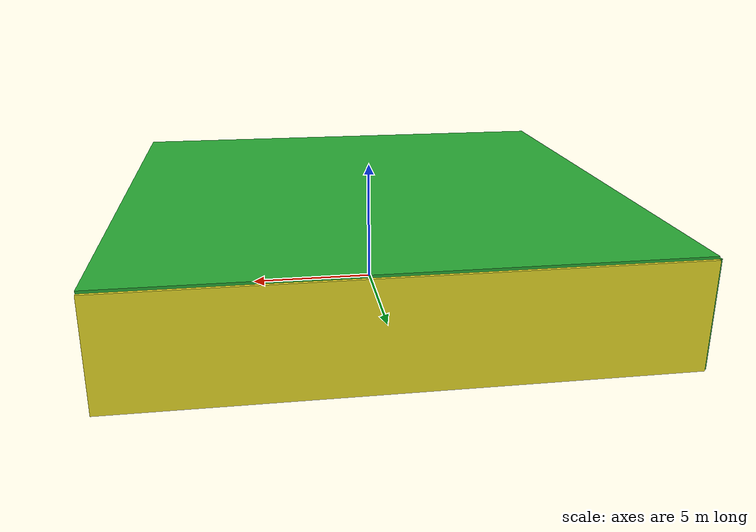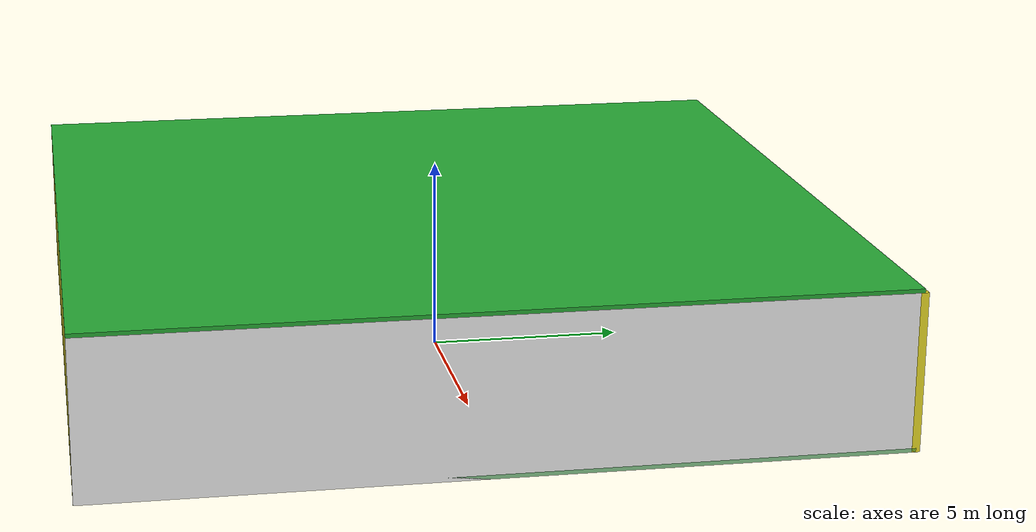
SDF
<sdf version="1.4">
 <world name="default">
  <physics type="ode">
   <max_step_size>0.001</max_step_size>
   <real_time_factor>1</real_time_factor>
   <real_time_update_rate>1000</real_time_update_rate>
   <gravity>0 0 -9.8</gravity>
  </physics>
  <scene><ambient>0.4 0.4 0.4 1</ambient><background>0.7 0.7 0.7 1</background><shadows>1</shadows></scene>
  <model name="Surrounding">
   <static>1</static>
   <link name="Ceiling">
    <collision name="Ceiling_Collision"><geometry><box><size>20 20 0.1</size></box></geometry></collision>
    <visual name="Ceiling_Visual">
     <geometry><box><size>20 20 0.1</size></box></geometry>
     <material>
      <script><uri>file://media/materials/scripts/gazebo.material</uri><name>Gazebo/GreenGlow</name></script>
     </material>
    </visual>
    <pose>0 0 4.05 0 0 0</pose>
   </link>
   <link name="Wall_South">
    <collision name="Wall_South_Collision">
     <geometry><box><size>20 0 4</size></box></geometry>
     <pose>0 0 2 0 -0 0</pose>
    </collision>
    <visual name="Wall_South_Visual">
     <pose>0 0 2 0 -0 0</pose>
     <geometry><box><size>20 0 4</size></box></geometry>
     <material>
      <script><uri>file://media/materials/scripts/gazebo.material</uri><name>Gazebo/YellowGlow</name></script>
     </material>
    </visual>
    <velocity_decay><linear>0</linear><angular>0</angular></velocity_decay>
    <pose>0 -10 0 0 -0 0</pose>
   </link>
   <link name="Wall_East">
    <collision name="Wall_21_Collision">
     <geometry><box><size>20 0 4</size></box></geometry>
     <pose>0 0 2 0 -0 0</pose>
    </collision>
    <visual name="Wall_21_Visual">
     <pose>0 0 2 0 -0 0</pose>
     <geometry><box><size>20 0 4</size></box></geometry>
     <material>
      <script><uri>file://media/materials/scripts/gazebo.material</uri><name>Gazebo/White</name></script>
     </material>
    </visual>
    <velocity_decay><linear>0</linear><angular>0</angular></velocity_decay>
    <pose>10 0 0 0 -0 1.5708</pose>
   </link>
   <link name="Wall_North">
    <collision name="Wall_22_Collision">
     <geometry><box><size>20 0.2 4</size></box></geometry>
     <pose>0 0 2 0 -0 0</pose>
    </collision>
    <visual name="Wall_22_Visual">
     <pose>0 0 2 0 -0 0</pose>
     <geometry><box><size>20 0.2 4</size></box></geometry>
     <material>
      <script><uri>file://media/materials/scripts/gazebo.material</uri><name>Gazebo/YellowGlow</name></script>
     </material>
    </visual>
    <velocity_decay><linear>0</linear><angular>0</angular></velocity_decay>
    <pose>0 10 0 0 -0 0</pose>
   </link>
   <link name="Wall_West">
    <collision name="Wall_23_Collision">
     <geometry><box><size>20 0.2 4</size></box></geometry>
     <pose>0 0 2 0 -0 0</pose>
    </collision>
    <visual name="Wall_23_Visual">
     <pose>0 0 2 0 -0 0</pose>
     <geometry><box><size>20 0.2 4</size></box></geometry>
     <material>
      <script><uri>file://media/materials/scripts/gazebo.material</uri><name>Gazebo/Green</name></script>
     </material>
    </visual>
    <velocity_decay><linear>0</linear><angular>0</angular></velocity_decay>
    <pose>-10 0 0 0 0 -1.5708</pose>
   </link>
   <link name="Ground_link">
    <collision name="collision">
     <pose>0 0 .05 0 -0 0</pose>
     <geometry><box><size>20 20 0.1</size></box></geometry>
    </collision>
    <visual name="visual">
     <pose>0 0 .05 0 -0 0</pose>
     <geometry><box><size>20 20 0.1</size></box></geometry>
     <material>
      <script><uri>file://media/materials/scripts/gazebo.material</uri><name>Gazebo/GreenTransparent</name></script>
     </material>
    </visual>
   </link>
   <static>1</static>
  </model>
  <spherical_coordinates>
   <surface_model>EARTH_WGS84</surface_model>
   <latitude_deg>0</latitude_deg>
   <longitude_deg>0</longitude_deg>
   <elevation>0</elevation>
   <heading_deg>0</heading_deg>
  </spherical_coordinates>
  <light name="lightball_0" type="diffuse">
   <diffuse>0.8 0.8 0.8 1</diffuse>
   <specular>0.2 0.2 0.2 1</specular>
   <attenuation>
    <range>100</range>
    <constant>0.7</constant>
    <linear>0.01</linear>
    <quadratic>0.001</quadratic>
   </attenuation>
   <direction>-0.5 0.1 -0.9</direction>
   <pose>-9.22104820677 7.57523105577 3.04976609999 0 0 0</pose>
  </light>
  <light name="lightball_1" type="diffuse">
   <diffuse>0.8 0.8 0.8 1</diffuse>
   <specular>0.2 0.2 0.2 1</specular>
   <attenuation>
    <range>100</range>
    <constant>0.7</constant>
    <linear>0.01</linear>
    <quadratic>0.001</quadratic>
   </attenuation>
   <direction>-0.5 0.1 -0.9</direction>
   <pose>8.16633355419 8.81754797891 1.87279971189 0 0 0</pose>
  </light>
  <light name="lightball_2" type="diffuse">
   <diffuse>0.8 0.8 0.8 1</diffuse>
   <specular>0.2 0.2 0.2 1</specular>
   <attenuation>
    <range>100</range>
    <constant>0.7</constant>
    <linear>0.01</linear>
    <quadratic>0.001</quadratic>
   </attenuation>
   <direction>-0.5 0.1 -0.9</direction>
   <pose>3.21916962949 6.00080391195 3.33854184169 0 0 0</pose>
  </light>
  <light name="lightball_3" type="diffuse">
   <diffuse>0.8 0.8 0.8 1</diffuse>
   <specular>0.2 0.2 0.2 1</specular>
   <attenuation>
    <range>100</range>
    <constant>0.7</constant>
    <linear>0.01</linear>
    <quadratic>0.001</quadratic>
   </attenuation>
   <direction>-0.5 0.1 -0.9</direction>
   <pose>-5.10274432461 -1.9504167699 2.84079732716 0 0 0</pose>
  </light>
  <light name="lightball_4" type="diffuse">
   <diffuse>0.8 0.8 0.8 1</diffuse>
   <specular>0.2 0.2 0.2 1</specular>
   <attenuation>
    <range>100</range>
    <constant>0.7</constant>
    <linear>0.01</linear>
    <quadratic>0.001</quadratic>
   </attenuation>
   <direction>-0.5 0.1 -0.9</direction>
   <pose>3.81216593324 -6.32615904063 1.68444942455 0 0 0</pose>
  </light>
  <light name="lightball_5" type="diffuse">
   <diffuse>0.8 0.8 0.8 1</diffuse>
   <specular>0.2 0.2 0.2 1</specular>
   <attenuation>
    <range>100</range>
    <constant>0.7</constant>
    <linear>0.01</linear>
    <quadratic>0.001</quadratic>
   </attenuation>
   <direction>-0.5 0.1 -0.9</direction>
   <pose>-3.87920378013 -9.24249927206 0.740392320191 0 0 0</pose>
  </light>
  <light name="lightball_6" type="diffuse">
   <diffuse>0.8 0.8 0.8 1</diffuse>
   <specular>0.2 0.2 0.2 1</specular>
   <attenuation>
    <range>100</range>
    <constant>0.7</constant>
    <linear>0.01</linear>
    <quadratic>0.001</quadratic>
   </attenuation>
   <direction>-0.5 0.1 -0.9</direction>
   <pose>0.481341466564 -7.93785291898 3.44676721865 0 0 0</pose>
  </light>
  <light name="lightball_7" type="diffuse">
   <diffuse>0.8 0.8 0.8 1</diffuse>
   <specular>0.2 0.2 0.2 1</specular>
   <attenuation>
    <range>100</range>
    <constant>0.7</constant>
    <linear>0.01</linear>
    <quadratic>0.001</quadratic>
   </attenuation>
   <direction>-0.5 0.1 -0.9</direction>
   <pose>-4.05989779372 -2.2055025168 3.49017837028 0 0 0</pose>
  </light>
  <light name="lightball_8" type="diffuse">
   <diffuse>0.8 0.8 0.8 1</diffuse>
   <specular>0.2 0.2 0.2 1</specular>
   <attenuation>
    <range>100</range>
    <constant>0.7</constant>
    <linear>0.01</linear>
    <quadratic>0.001</quadratic>
   </attenuation>
   <direction>-0.5 0.1 -0.9</direction>
   <pose>-8.10350334297 -2.83617928108 2.66051544034 0 0 0</pose>
  </light>
  <light name="lightball_9" type="diffuse">
   <diffuse>0.8 0.8 0.8 1</diffuse>
   <specular>0.2 0.2 0.2 1</specular>
   <attenuation>
    <range>100</range>
    <constant>0.7</constant>
    <linear>0.01</linear>
    <quadratic>0.001</quadratic>
   </attenuation>
   <direction>-0.5 0.1 -0.9</direction>
   <pose>-8.5505756157 1.96339071026 0.566917824476 0 0 0</pose>
  </light>
  <light name="lightball_10" type="diffuse">
   <diffuse>0.8 0.8 0.8 1</diffuse>
   <specular>0.2 0.2 0.2 1</specular>
   <attenuation>
    <range>100</range>
    <constant>0.7</constant>
    <linear>0.01</linear>
    <quadratic>0.001</quadratic>
   </attenuation>
   <direction>-0.5 0.1 -0.9</direction>
   <pose>-2.42099521364 -6.08687332703 2.35409817444 0 0 0</pose>
  </light>
  <light name="lightball_11" type="diffuse">
   <diffuse>0.8 0.8 0.8 1</diffuse>
   <specular>0.2 0.2 0.2 1</specular>
   <attenuation>
    <range>100</range>
    <constant>0.7</constant>
    <linear>0.01</linear>
    <quadratic>0.001</quadratic>
   </attenuation>
   <direction>-0.5 0.1 -0.9</direction>
   <pose>2.07621673284 7.69373932062 3.76334918425 0 0 0</pose>
  </light>
  <include><uri>model://cabinet</uri><pose>-8.13598823944 -4.56098373223 0 0 0 2.43663522907</pose></include>
  <include><uri>model://table</uri><pose>1.35273153966 -7.15501503743 0 0 0 0.698008104184</pose></include>
  <include><uri>model://table</uri><pose>0.688545484117 -1.79616035185 0 0 0 1.05383049581</pose></include>
  <include><uri>model://cabinet</uri><pose>5.13012954606 4.33505862001 0 0 0 0.0590383514158</pose></include>
  <include>
   <uri>model://construction_cone</uri>
   <pose>4.80300014947 6.70849500105 0 0 0 0.648803685996</pose>
  </include>
  <include><uri>model://cabinet</uri><pose>6.3151199975 0.548964291432 0 0 0 2.50658138542</pose></include>
  <include><uri>model://cabinet</uri><pose>7.20275870658 4.12536781255 0 0 0 0.494173482766</pose></include>
 </world>
</sdf>

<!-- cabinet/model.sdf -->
<sdf version="1.5">
  <model name="cabinet">
    <static>true</static>
    <link name="cabinet_bottom_plate">
      <inertial>
        <pose>0 0 -1 0 0 0</pose>
        <inertia>
          <ixx>2.050000</ixx>
          <ixy>0</ixy>
          <ixz>0</ixz>
          <iyy>2.050000</iyy>
          <iyz>0</iyz>
          <izz>2.050000</izz>
        </inertia>
        <mass>25.000000</mass>
      </inertial>
      <collision name="cabinet_bottom_plate_geom">
        <pose>0 0 0.010000 0 0 0</pose>
        <geometry>
          <box>
            <size>0.450000 0.450000 0.020000</size>
          </box>
        </geometry>
      </collision>
      <visual name="cabinet_bottom_plate_geom_visual">
        <pose>0 0 0.010000 0 0 0</pose>
        <geometry>
          <box>
            <size>0.450000 0.450000 0.020000</size>
          </box>
        </geometry>
        <material>
          <script>
            <uri>model://media/materials/scripts/gazebo.material</uri>
            <name>Gazebo/Wood</name>
          </script>
        </material>
      </visual>
      <collision name="cabinet_bottom_plate_geom_cabinet_back_plate">
        <pose>0.235000 0 0.510000 0 0 0</pose>
        <geometry>
          <box>
            <size>0.020000 0.450000 1.020000</size>
          </box>
        </geometry>
      </collision>
      <visual name="cabinet_bottom_plate_geom_cabinet_back_plate_visual">
        <pose>0.235000 0 0.510000 0 0 0</pose>
        <geometry>
          <box>
            <size>0.020000 0.450000 1.020000</size>
          </box>
        </geometry>
        <material>
          <script>
            <uri>model://media/materials/scripts/gazebo.material</uri>
            <name>Gazebo/Wood</name>
          </script>
        </material>
      </visual>
      <collision name="cabinet_bottom_plate_geom_cabinet_left_plate">
        <pose>0 0.235000 0.510000 0 0 0</pose>
        <geometry>
          <box>
            <size>0.450000 0.020000 1.020000</size>
          </box>
        </geometry>
      </collision>
      <visual name="cabinet_bottom_plate_geom_cabinet_left_plate_visual">
        <pose>0 0.235000 0.510000 0 0 0</pose>
        <geometry>
          <box>
            <size>0.450000 0.020000 1.020000</size>
          </box>
        </geometry>
        <material>
          <script>
            <uri>model://media/materials/scripts/gazebo.material</uri>
            <name>Gazebo/Wood</name>
          </script>
        </material>
      </visual>
      <collision name="cabinet_bottom_plate_geom_cabinet_middle_plate">
        <pose>0 0 0.510000 0 0 0</pose>
        <geometry>
          <box>
            <size>0.450000 0.450000 0.020000</size>
          </box>
        </geometry>
      </collision>
      <visual name="cabinet_bottom_plate_geom_cabinet_middle_plate_visual">
        <pose>0 0 0.510000 0 0 0</pose>
        <geometry>
          <box>
            <size>0.450000 0.450000 0.020000</size>
          </box>
        </geometry>
        <material>
          <script>
            <uri>model://media/materials/scripts/gazebo.material</uri>
            <name>Gazebo/Wood</name>
          </script>
        </material>
      </visual>
      <collision name="cabinet_bottom_plate_geom_cabinet_right_plate">
        <pose>0 -0.235000 0.510000 0 0 0</pose>
        <geometry>
          <box>
            <size>0.450000 0.020000 1.020000</size>
          </box>
        </geometry>
      </collision>
      <visual name="cabinet_bottom_plate_geom_cabinet_right_plate_visual">
        <pose>0 -0.235000 0.510000 0 0 0</pose>
        <geometry>
          <box>
            <size>0.450000 0.020000 1.020000</size>
          </box>
        </geometry>
        <material>
          <script>
            <uri>model://media/materials/scripts/gazebo.material</uri>
            <name>Gazebo/Wood</name>
          </script>
        </material>
      </visual>
      <collision name="cabinet_bottom_plate_geom_cabinet_top_plate">
        <pose>0 0 1.010000 0 0 0</pose>
        <geometry>
          <box>
            <size>0.450000 0.450000 0.020000</size>
          </box>
        </geometry>
      </collision>
      <visual name="cabinet_bottom_plate_geom_cabinet_top_plate_visual">
        <pose>0 0 1.010000 0 0 0</pose>
        <geometry>
          <box>
            <size>0.450000 0.450000 0.020000</size>
          </box>
        </geometry>
        <material>
          <script>
            <uri>model://media/materials/scripts/gazebo.material</uri>
            <name>Gazebo/Wood</name>
          </script>
        </material>
      </visual>
    </link>
  </model>
</sdf>

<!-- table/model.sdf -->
<sdf version="1.5">
  <model name="table">
    <static>true</static>
    <link name="link">
      <collision name="surface">
        <pose>0 0 1.0 0 0 0</pose>
        <geometry>
          <box>
            <size>1.5 0.8 0.03</size>
          </box>
        </geometry>
        <surface>
          <friction>
            <ode>
              <mu>0.6</mu>
              <mu2>0.6</mu2>
            </ode>
          </friction>
        </surface>
      </collision>
      <visual name="visual1">
        <pose>0 0 1.0 0 0 0</pose>
        <geometry>
          <box>
            <size>1.5 0.8 0.03</size>
          </box>
        </geometry>
        <material>
          <script>
            <uri>model://media/materials/scripts/gazebo.material</uri>
            <name>Gazebo/Wood</name>
          </script>
        </material>
      </visual>
      <collision name="front_left_leg">
        <pose>0.68 0.38 0.5 0 0 0</pose>
        <geometry>
          <cylinder>
            <radius>0.02</radius>
            <length>1.0</length>
          </cylinder>
        </geometry>
      </collision>
      <visual name="front_left_leg">
        <pose>0.68 0.38 0.5 0 0 0</pose>
        <geometry>
          <cylinder>
            <radius>0.02</radius>
            <length>1.0</length>
          </cylinder>
        </geometry>
        <material>
          <script>
            <uri>model://media/materials/scripts/gazebo.material</uri>
            <name>Gazebo/Grey</name>
          </script>
        </material>
      </visual>
      <collision name="front_right_leg">
        <pose>0.68 -0.38 0.5 0 0 0</pose>
        <geometry>
          <cylinder>
            <radius>0.02</radius>
            <length>1.0</length>
          </cylinder>
        </geometry>
      </collision>
      <visual name="front_right_leg">
        <pose>0.68 -0.38 0.5 0 0 0</pose>
        <geometry>
          <cylinder>
            <radius>0.02</radius>
            <length>1.0</length>
          </cylinder>
        </geometry>
        <material>
          <script>
            <uri>model://media/materials/scripts/gazebo.material</uri>
            <name>Gazebo/Grey</name>
          </script>
        </material>
      </visual>
      <collision name="back_right_leg">
        <pose>-0.68 -0.38 0.5 0 0 0</pose>
        <geometry>
          <cylinder>
            <radius>0.02</radius>
            <length>1.0</length>
          </cylinder>
        </geometry>
      </collision>
      <visual name="back_right_leg">
        <pose>-0.68 -0.38 0.5 0 0 0</pose>
        <geometry>
          <cylinder>
            <radius>0.02</radius>
            <length>1.0</length>
          </cylinder>
        </geometry>
        <material>
          <script>
            <uri>model://media/materials/scripts/gazebo.material</uri>
            <name>Gazebo/Grey</name>
          </script>
        </material>
      </visual>
      <collision name="back_left_leg">
        <pose>-0.68 0.38 0.5 0 0 0</pose>
        <geometry>
          <cylinder>
            <radius>0.02</radius>
            <length>1.0</length>
          </cylinder>
        </geometry>
      </collision>
      <visual name="back_left_leg">
        <pose>-0.68 0.38 0.5 0 0 0</pose>
        <geometry>
          <cylinder>
            <radius>0.02</radius>
            <length>1.0</length>
          </cylinder>
        </geometry>
        <material>
          <script>
            <uri>model://media/materials/scripts/gazebo.material</uri>
            <name>Gazebo/Grey</name>
          </script>
        </material>
      </visual>
    </link>
  </model>
</sdf>

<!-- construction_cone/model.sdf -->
<sdf version="1.5">
  <model name="Construction Cone">
    <link name="link">
      <collision name="collision">
        <geometry>
          <mesh>
            <scale>10 10 10</scale>
            <uri>file://isr-testbed/construction_cone/meshes/construction_cone.dae</uri>
          </mesh>
        </geometry>
      </collision>
      <visual name="visual">
        <geometry>
          <mesh>
            <scale>10 10 10</scale>
            <uri>file://isr-testbed/construction_cone/meshes/construction_cone.dae</uri>
          </mesh>
        </geometry>
      </visual>
    </link>
  </model>
</sdf>
